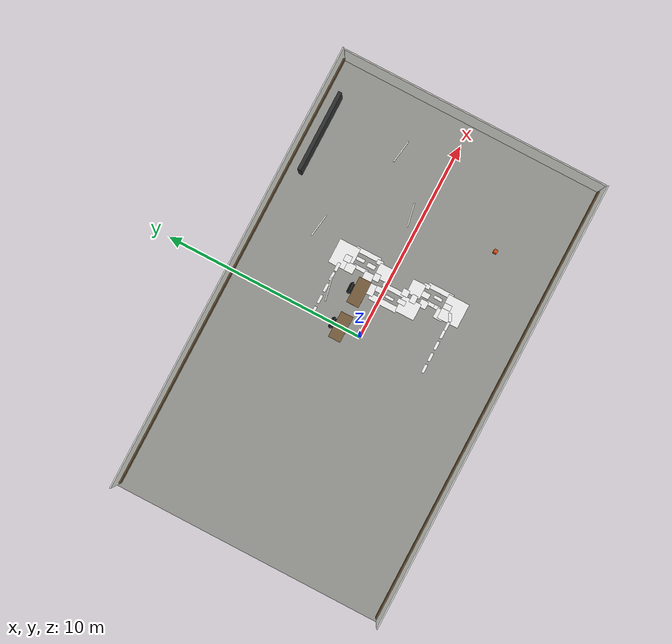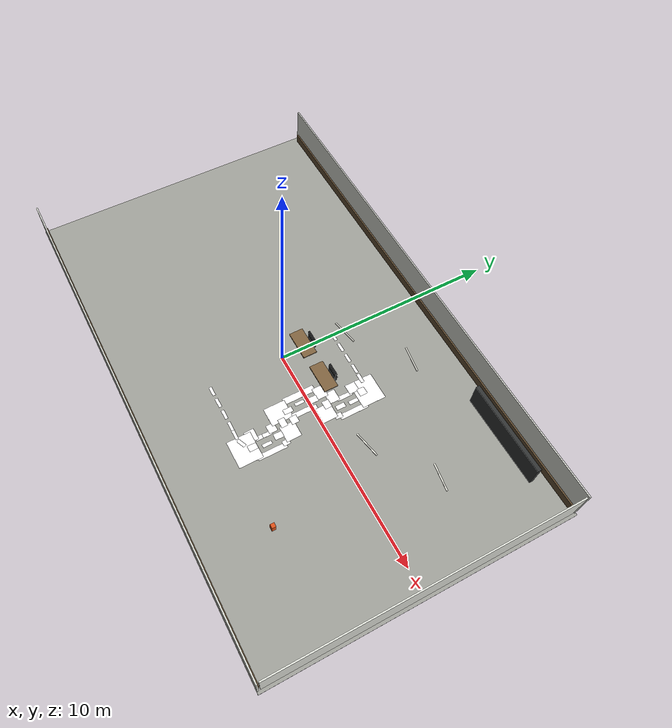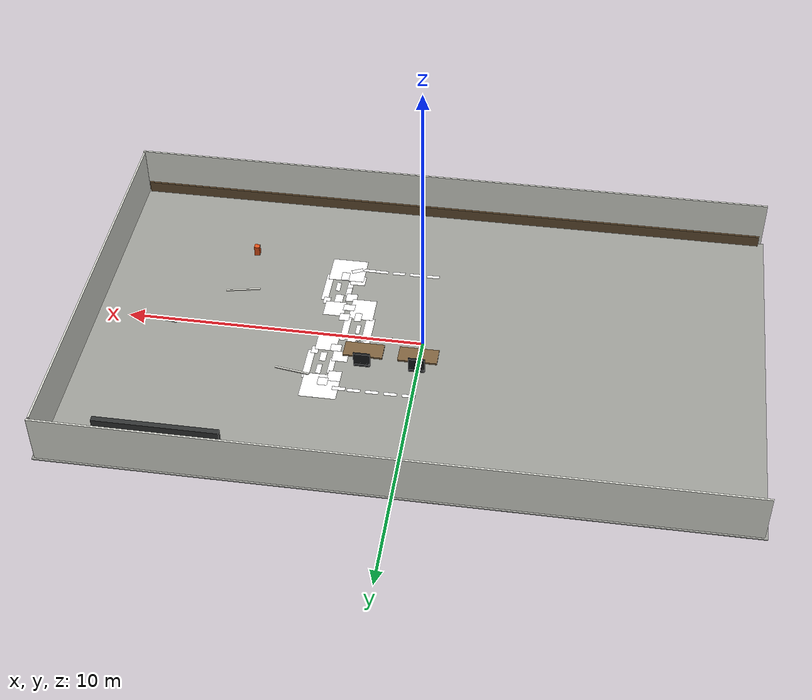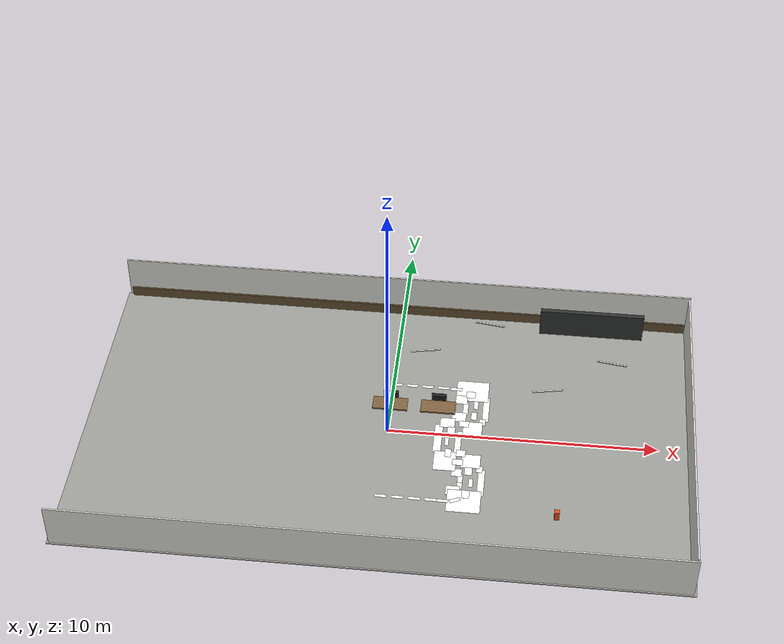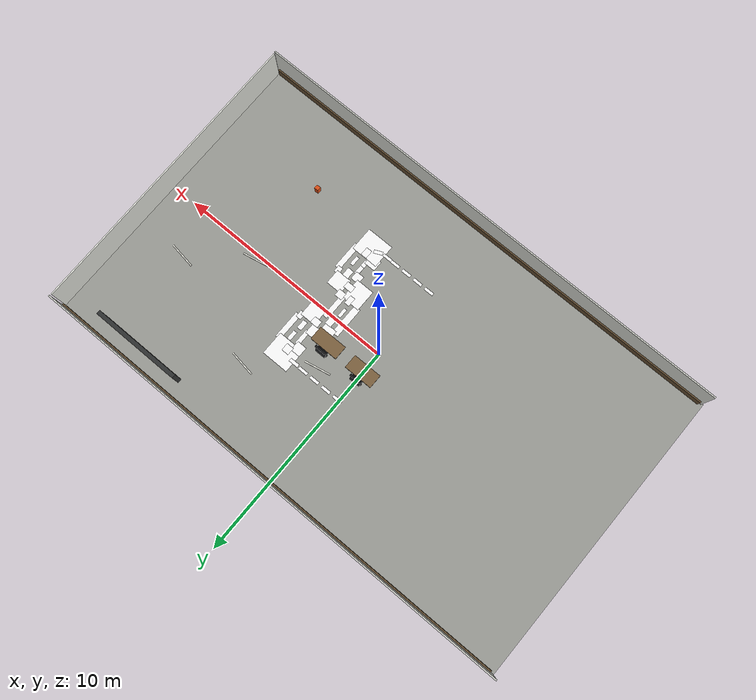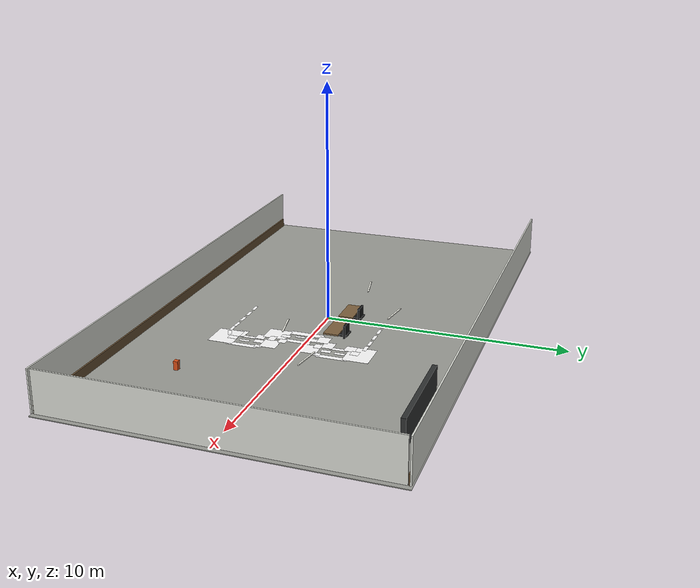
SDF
<sdf version="1.10">
 <world name="kookmin_xycar_track">
  <model name="kookmin_track">
   <static>true</static>
   <link name="floor_base">
    <pose>0 0 -0.014999999999999999 0 0 0</pose>
    <collision name="collision">
     <geometry><box><size>22.5 13.5 0.029999999999999999</size></box></geometry>
     <surface>
      <friction>
       <ode><mu>50</mu><mu2>50</mu2></ode>
       <bullet><friction>1</friction><rolling_friction>0.10000000000000001</rolling_friction></bullet>
      </friction>
     </surface>
    </collision>
    <visual name="visual">
     <geometry><box><size>22.5 13.5 0.029999999999999999</size></box></geometry>
     <material>
      <ambient>0.611800015 0.615700006 0.592199981 1</ambient>
      <diffuse>0.611800015 0.615700006 0.592199981 1</diffuse>
     </material>
    </visual>
    <inertial>
     <mass>1</mass>
     <inertia><ixx>1</ixx><ixy>0</ixy><ixz>0</ixz><iyy>1</iyy><iyz>0</iyz><izz>1</izz></inertia>
    </inertial>
   </link>
   <link name="track_texture_surface">
    <pose>0 0 0.0060000000000000001 0 0 0</pose>
    <visual name="visual">
     <geometry><plane><normal>0 0 1</normal><size>22.5 13.5</size></plane></geometry>
     <material>
      <ambient>1 1 1 1</ambient>
      <diffuse>1 1 1 1</diffuse>
      <pbr>
       <metal>
        <albedo_map>file://media/materials/textures/kookmin_track_road.png</albedo_map>
        <roughness>1</roughness>
        <metalness>0</metalness>
       </metal>
      </pbr>
     </material>
    </visual>
    <inertial>
     <mass>1</mass>
     <inertia><ixx>1</ixx><ixy>0</ixy><ixz>0</ixz><iyy>1</iyy><iyz>0</iyz><izz>1</izz></inertia>
    </inertial>
   </link>
  </model>
  <model name="white_line_cad_07">
   <static>true</static>
   <pose>2.8650000000000002 -2.3149999999999999 0.0152 0 0 0</pose>
   <link name="white_line_cad_07_surface">
    <visual name="visual">
     <cast_shadows>false</cast_shadows>
     <geometry><plane><normal>0 0 1</normal><size>0.19 0.70999999999999996</size></plane></geometry>
     <material>
      <ambient>1 1 1 1</ambient>
      <diffuse>1 1 1 1</diffuse>
      <emissive>0.949000001 0.949000001 0.925499976 1</emissive>
      <pbr>
       <metal>
        <albedo_map>file://media/materials/textures/kookmin_white_line_cad_07.png</albedo_map>
        <roughness>1</roughness>
        <metalness>0</metalness>
       </metal>
      </pbr>
     </material>
    </visual>
    <inertial>
     <mass>1</mass>
     <inertia><ixx>1</ixx><ixy>0</ixy><ixz>0</ixz><iyy>1</iyy><iyz>0</iyz><izz>1</izz></inertia>
    </inertial>
   </link>
  </model>
  <model name="white_line_cad_08">
   <static>true</static>
   <pose>2.645 -2.7749999999999999 0.0154 0 0 0</pose>
   <link name="white_line_cad_08_surface">
    <visual name="visual">
     <cast_shadows>false</cast_shadows>
     <geometry><plane><normal>0 0 1</normal><size>0.51000000000000001 0.45000000000000001</size></plane></geometry>
     <material>
      <ambient>1 1 1 1</ambient>
      <diffuse>1 1 1 1</diffuse>
      <emissive>0.949000001 0.949000001 0.925499976 1</emissive>
      <pbr>
       <metal>
        <albedo_map>file://media/materials/textures/kookmin_white_line_cad_08.png</albedo_map>
        <roughness>1</roughness>
        <metalness>0</metalness>
       </metal>
      </pbr>
     </material>
    </visual>
    <inertial>
     <mass>1</mass>
     <inertia><ixx>1</ixx><ixy>0</ixy><ixz>0</ixz><iyy>1</iyy><iyz>0</iyz><izz>1</izz></inertia>
    </inertial>
   </link>
  </model>
  <model name="white_line_cad_09">
   <static>true</static>
   <pose>3.0699999999999998 -3.2599999999999998 0.015599999999999999 0 0 0</pose>
   <link name="white_line_cad_09_surface">
    <visual name="visual">
     <cast_shadows>false</cast_shadows>
     <geometry><plane><normal>0 0 1</normal><size>1.22 1.0600000000000001</size></plane></geometry>
     <material>
      <ambient>1 1 1 1</ambient>
      <diffuse>1 1 1 1</diffuse>
      <emissive>0.949000001 0.949000001 0.925499976 1</emissive>
      <pbr>
       <metal>
        <albedo_map>file://media/materials/textures/kookmin_white_line_cad_09.png</albedo_map>
        <roughness>1</roughness>
        <metalness>0</metalness>
       </metal>
      </pbr>
     </material>
    </visual>
    <inertial>
     <mass>1</mass>
     <inertia><ixx>1</ixx><ixy>0</ixy><ixz>0</ixz><iyy>1</iyy><iyz>0</iyz><izz>1</izz></inertia>
    </inertial>
   </link>
  </model>
  <model name="white_line_cad_10">
   <static>true</static>
   <pose>3.6299999999999999 -2.3199999999999998 0.015800000000000002 0 0 0</pose>
   <link name="white_line_cad_10_surface">
    <visual name="visual">
     <cast_shadows>false</cast_shadows>
     <geometry><plane><normal>0 0 1</normal><size>0.23999999999999999 1.28</size></plane></geometry>
     <material>
      <ambient>1 1 1 1</ambient>
      <diffuse>1 1 1 1</diffuse>
      <emissive>0.949000001 0.949000001 0.925499976 1</emissive>
      <pbr>
       <metal>
        <albedo_map>file://media/materials/textures/kookmin_white_line_cad_10.png</albedo_map>
        <roughness>1</roughness>
        <metalness>0</metalness>
       </metal>
      </pbr>
     </material>
    </visual>
    <inertial>
     <mass>1</mass>
     <inertia><ixx>1</ixx><ixy>0</ixy><ixz>0</ixz><iyy>1</iyy><iyz>0</iyz><izz>1</izz></inertia>
    </inertial>
   </link>
  </model>
  <model name="white_line_cad_11">
   <static>true</static>
   <pose>3.5350000000000001 -1.645 0.016 0 0 0</pose>
   <link name="white_line_cad_11_surface">
    <visual name="visual">
     <cast_shadows>false</cast_shadows>
     <geometry><plane><normal>0 0 1</normal><size>0.23000000000000001 0.31</size></plane></geometry>
     <material>
      <ambient>1 1 1 1</ambient>
      <diffuse>1 1 1 1</diffuse>
      <emissive>0.949000001 0.949000001 0.925499976 1</emissive>
      <pbr>
       <metal>
        <albedo_map>file://media/materials/textures/kookmin_white_line_cad_11.png</albedo_map>
        <roughness>1</roughness>
        <metalness>0</metalness>
       </metal>
      </pbr>
     </material>
    </visual>
    <inertial>
     <mass>1</mass>
     <inertia><ixx>1</ixx><ixy>0</ixy><ixz>0</ixz><iyy>1</iyy><iyz>0</iyz><izz>1</izz></inertia>
    </inertial>
   </link>
  </model>
  <model name="white_line_cad_12">
   <static>true</static>
   <pose>2.8149999999999999 1.4450000000000001 0.016199999999999999 0 0 0</pose>
   <link name="white_line_cad_12_surface">
    <visual name="visual">
     <cast_shadows>false</cast_shadows>
     <geometry><plane><normal>0 0 1</normal><size>0.19 0.70999999999999996</size></plane></geometry>
     <material>
      <ambient>1 1 1 1</ambient>
      <diffuse>1 1 1 1</diffuse>
      <emissive>0.949000001 0.949000001 0.925499976 1</emissive>
      <pbr>
       <metal>
        <albedo_map>file://media/materials/textures/kookmin_white_line_cad_12.png</albedo_map>
        <roughness>1</roughness>
        <metalness>0</metalness>
       </metal>
      </pbr>
     </material>
    </visual>
    <inertial>
     <mass>1</mass>
     <inertia><ixx>1</ixx><ixy>0</ixy><ixz>0</ixz><iyy>1</iyy><iyz>0</iyz><izz>1</izz></inertia>
    </inertial>
   </link>
  </model>
  <model name="white_line_cad_13">
   <static>true</static>
   <pose>2.6000000000000001 0.97499999999999998 0.016400000000000001 0 0 0</pose>
   <link name="white_line_cad_13_surface">
    <visual name="visual">
     <cast_shadows>false</cast_shadows>
     <geometry><plane><normal>0 0 1</normal><size>0.52000000000000002 0.46999999999999997</size></plane></geometry>
     <material>
      <ambient>1 1 1 1</ambient>
      <diffuse>1 1 1 1</diffuse>
      <emissive>0.949000001 0.949000001 0.925499976 1</emissive>
      <pbr>
       <metal>
        <albedo_map>file://media/materials/textures/kookmin_white_line_cad_13.png</albedo_map>
        <roughness>1</roughness>
        <metalness>0</metalness>
       </metal>
      </pbr>
     </material>
    </visual>
    <inertial>
     <mass>1</mass>
     <inertia><ixx>1</ixx><ixy>0</ixy><ixz>0</ixz><iyy>1</iyy><iyz>0</iyz><izz>1</izz></inertia>
    </inertial>
   </link>
  </model>
  <model name="white_line_cad_14">
   <static>true</static>
   <pose>3.02 2.3999999999999999 0.0166 0 0 0</pose>
   <link name="white_line_cad_14_surface">
    <visual name="visual">
     <cast_shadows>false</cast_shadows>
     <geometry><plane><normal>0 0 1</normal><size>1.22 1.0600000000000001</size></plane></geometry>
     <material>
      <ambient>1 1 1 1</ambient>
      <diffuse>1 1 1 1</diffuse>
      <emissive>0.949000001 0.949000001 0.925499976 1</emissive>
      <pbr>
       <metal>
        <albedo_map>file://media/materials/textures/kookmin_white_line_cad_14.png</albedo_map>
        <roughness>1</roughness>
        <metalness>0</metalness>
       </metal>
      </pbr>
     </material>
    </visual>
    <inertial>
     <mass>1</mass>
     <inertia><ixx>1</ixx><ixy>0</ixy><ixz>0</ixz><iyy>1</iyy><iyz>0</iyz><izz>1</izz></inertia>
    </inertial>
   </link>
  </model>
  <model name="white_line_cad_15">
   <static>true</static>
   <pose>3.5800000000000001 1.45 0.016799999999999999 0 0 0</pose>
   <link name="white_line_cad_15_surface">
    <visual name="visual">
     <cast_shadows>false</cast_shadows>
     <geometry><plane><normal>0 0 1</normal><size>0.23999999999999999 1.28</size></plane></geometry>
     <material>
      <ambient>1 1 1 1</ambient>
      <diffuse>1 1 1 1</diffuse>
      <emissive>0.949000001 0.949000001 0.925499976 1</emissive>
      <pbr>
       <metal>
        <albedo_map>file://media/materials/textures/kookmin_white_line_cad_15.png</albedo_map>
        <roughness>1</roughness>
        <metalness>0</metalness>
       </metal>
      </pbr>
     </material>
    </visual>
    <inertial>
     <mass>1</mass>
     <inertia><ixx>1</ixx><ixy>0</ixy><ixz>0</ixz><iyy>1</iyy><iyz>0</iyz><izz>1</izz></inertia>
    </inertial>
   </link>
  </model>
  <model name="white_line_cad_16">
   <static>true</static>
   <pose>3.4849999999999999 0.78000000000000003 0.017000000000000001 0 0 0</pose>
   <link name="white_line_cad_16_surface">
    <visual name="visual">
     <cast_shadows>false</cast_shadows>
     <geometry><plane><normal>0 0 1</normal><size>0.23000000000000001 0.32000000000000001</size></plane></geometry>
     <material>
      <ambient>1 1 1 1</ambient>
      <diffuse>1 1 1 1</diffuse>
      <emissive>0.949000001 0.949000001 0.925499976 1</emissive>
      <pbr>
       <metal>
        <albedo_map>file://media/materials/textures/kookmin_white_line_cad_16.png</albedo_map>
        <roughness>1</roughness>
        <metalness>0</metalness>
       </metal>
      </pbr>
     </material>
    </visual>
    <inertial>
     <mass>1</mass>
     <inertia><ixx>1</ixx><ixy>0</ixy><ixz>0</ixz><iyy>1</iyy><iyz>0</iyz><izz>1</izz></inertia>
    </inertial>
   </link>
  </model>
  <model name="white_line_cad_17">
   <static>true</static>
   <pose>1.8999999999999999 -0.20499999999999999 0.0172 0 0 0</pose>
   <link name="white_line_cad_17_surface">
    <visual name="visual">
     <cast_shadows>false</cast_shadows>
     <geometry><plane><normal>0 0 1</normal><size>0.29999999999999999 1.4299999999999999</size></plane></geometry>
     <material>
      <ambient>1 1 1 1</ambient>
      <diffuse>1 1 1 1</diffuse>
      <emissive>0.949000001 0.949000001 0.925499976 1</emissive>
      <pbr>
       <metal>
        <albedo_map>file://media/materials/textures/kookmin_white_line_cad_17.png</albedo_map>
        <roughness>1</roughness>
        <metalness>0</metalness>
       </metal>
      </pbr>
     </material>
    </visual>
    <inertial>
     <mass>1</mass>
     <inertia><ixx>1</ixx><ixy>0</ixy><ixz>0</ixz><iyy>1</iyy><iyz>0</iyz><izz>1</izz></inertia>
    </inertial>
   </link>
  </model>
  <model name="white_line_cad_22">
   <static>true</static>
   <pose>2.8700000000000001 -2.165 0.018200000000000001 0 0 0</pose>
   <link name="white_line_cad_22_surface">
    <visual name="visual">
     <cast_shadows>false</cast_shadows>
     <geometry><plane><normal>0 0 1</normal><size>0.17999999999999999 0.40999999999999998</size></plane></geometry>
     <material>
      <ambient>1 1 1 1</ambient>
      <diffuse>1 1 1 1</diffuse>
      <emissive>0.949000001 0.949000001 0.925499976 1</emissive>
      <pbr>
       <metal>
        <albedo_map>file://media/materials/textures/kookmin_white_line_cad_22.png</albedo_map>
        <roughness>1</roughness>
        <metalness>0</metalness>
       </metal>
      </pbr>
     </material>
    </visual>
    <inertial>
     <mass>1</mass>
     <inertia><ixx>1</ixx><ixy>0</ixy><ixz>0</ixz><iyy>1</iyy><iyz>0</iyz><izz>1</izz></inertia>
    </inertial>
   </link>
  </model>
  <model name="white_line_cad_23">
   <static>true</static>
   <pose>2.2450000000000001 -1.3400000000000001 0.0184 0 0 0</pose>
   <link name="white_line_cad_23_surface">
    <visual name="visual">
     <cast_shadows>false</cast_shadows>
     <geometry><plane><normal>0 0 1</normal><size>0.82999999999999996 0.95999999999999996</size></plane></geometry>
     <material>
      <ambient>1 1 1 1</ambient>
      <diffuse>1 1 1 1</diffuse>
      <emissive>0.949000001 0.949000001 0.925499976 1</emissive>
      <pbr>
       <metal>
        <albedo_map>file://media/materials/textures/kookmin_white_line_cad_23.png</albedo_map>
        <roughness>1</roughness>
        <metalness>0</metalness>
       </metal>
      </pbr>
     </material>
    </visual>
    <inertial>
     <mass>1</mass>
     <inertia><ixx>1</ixx><ixy>0</ixy><ixz>0</ixz><iyy>1</iyy><iyz>0</iyz><izz>1</izz></inertia>
    </inertial>
   </link>
  </model>
  <model name="white_line_cad_24">
   <static>true</static>
   <pose>2.7200000000000002 -1.885 0.018599999999999998 0 0 0</pose>
   <link name="white_line_cad_24_surface">
    <visual name="visual">
     <cast_shadows>false</cast_shadows>
     <geometry><plane><normal>0 0 1</normal><size>0.38 0.37</size></plane></geometry>
     <material>
      <ambient>1 1 1 1</ambient>
      <diffuse>1 1 1 1</diffuse>
      <emissive>0.949000001 0.949000001 0.925499976 1</emissive>
      <pbr>
       <metal>
        <albedo_map>file://media/materials/textures/kookmin_white_line_cad_24.png</albedo_map>
        <roughness>1</roughness>
        <metalness>0</metalness>
       </metal>
      </pbr>
     </material>
    </visual>
    <inertial>
     <mass>1</mass>
     <inertia><ixx>1</ixx><ixy>0</ixy><ixz>0</ixz><iyy>1</iyy><iyz>0</iyz><izz>1</izz></inertia>
    </inertial>
   </link>
  </model>
  <model name="white_line_cad_25">
   <static>true</static>
   <pose>2.1949999999999998 0.625 0.018800000000000001 0 0 0</pose>
   <link name="white_line_cad_25_surface">
    <visual name="visual">
     <cast_shadows>false</cast_shadows>
     <geometry><plane><normal>0 0 1</normal><size>0.55000000000000004 0.48999999999999999</size></plane></geometry>
     <material>
      <ambient>1 1 1 1</ambient>
      <diffuse>1 1 1 1</diffuse>
      <emissive>0.949000001 0.949000001 0.925499976 1</emissive>
      <pbr>
       <metal>
        <albedo_map>file://media/materials/textures/kookmin_white_line_cad_25.png</albedo_map>
        <roughness>1</roughness>
        <metalness>0</metalness>
       </metal>
      </pbr>
     </material>
    </visual>
    <inertial>
     <mass>1</mass>
     <inertia><ixx>1</ixx><ixy>0</ixy><ixz>0</ixz><iyy>1</iyy><iyz>0</iyz><izz>1</izz></inertia>
    </inertial>
   </link>
  </model>
  <model name="white_line_cad_26">
   <static>true</static>
   <pose>2.7549999999999999 0.065000000000000002 0.019 0 0 0</pose>
   <link name="white_line_cad_26_surface">
    <visual name="visual">
     <cast_shadows>false</cast_shadows>
     <geometry><plane><normal>0 0 1</normal><size>0.33000000000000002 0.28999999999999998</size></plane></geometry>
     <material>
      <ambient>1 1 1 1</ambient>
      <diffuse>1 1 1 1</diffuse>
      <emissive>0.949000001 0.949000001 0.925499976 1</emissive>
      <pbr>
       <metal>
        <albedo_map>file://media/materials/textures/kookmin_white_line_cad_26.png</albedo_map>
        <roughness>1</roughness>
        <metalness>0</metalness>
       </metal>
      </pbr>
     </material>
    </visual>
    <inertial>
     <mass>1</mass>
     <inertia><ixx>1</ixx><ixy>0</ixy><ixz>0</ixz><iyy>1</iyy><iyz>0</iyz><izz>1</izz></inertia>
    </inertial>
   </link>
  </model>
  <model name="white_line_cad_27">
   <static>true</static>
   <pose>3.145 0.41499999999999998 0.019199999999999998 0 0 0</pose>
   <link name="white_line_cad_27_surface">
    <visual name="visual">
     <cast_shadows>false</cast_shadows>
     <geometry><plane><normal>0 0 1</normal><size>0.70999999999999996 0.67000000000000004</size></plane></geometry>
     <material>
      <ambient>1 1 1 1</ambient>
      <diffuse>1 1 1 1</diffuse>
      <emissive>0.949000001 0.949000001 0.925499976 1</emissive>
      <pbr>
       <metal>
        <albedo_map>file://media/materials/textures/kookmin_white_line_cad_27.png</albedo_map>
        <roughness>1</roughness>
        <metalness>0</metalness>
       </metal>
      </pbr>
     </material>
    </visual>
    <inertial>
     <mass>1</mass>
     <inertia><ixx>1</ixx><ixy>0</ixy><ixz>0</ixz><iyy>1</iyy><iyz>0</iyz><izz>1</izz></inertia>
    </inertial>
   </link>
  </model>
  <model name="white_line_cad_28">
   <static>true</static>
   <pose>2.6549999999999998 -0.42999999999999999 0.019400000000000001 0 0 0</pose>
   <link name="white_line_cad_28_surface">
    <visual name="visual">
     <cast_shadows>false</cast_shadows>
     <geometry><plane><normal>0 0 1</normal><size>0.23000000000000001 0.93999999999999995</size></plane></geometry>
     <material>
      <ambient>1 1 1 1</ambient>
      <diffuse>1 1 1 1</diffuse>
      <emissive>0.949000001 0.949000001 0.925499976 1</emissive>
      <pbr>
       <metal>
        <albedo_map>file://media/materials/textures/kookmin_white_line_cad_28.png</albedo_map>
        <roughness>1</roughness>
        <metalness>0</metalness>
       </metal>
      </pbr>
     </material>
    </visual>
    <inertial>
     <mass>1</mass>
     <inertia><ixx>1</ixx><ixy>0</ixy><ixz>0</ixz><iyy>1</iyy><iyz>0</iyz><izz>1</izz></inertia>
    </inertial>
   </link>
  </model>
  <model name="white_line_cad_29">
   <static>true</static>
   <pose>3.1949999999999998 -1.2749999999999999 0.019599999999999999 0 0 0</pose>
   <link name="white_line_cad_29_surface">
    <visual name="visual">
     <cast_shadows>false</cast_shadows>
     <geometry><plane><normal>0 0 1</normal><size>0.70999999999999996 0.67000000000000004</size></plane></geometry>
     <material>
      <ambient>1 1 1 1</ambient>
      <diffuse>1 1 1 1</diffuse>
      <emissive>0.949000001 0.949000001 0.925499976 1</emissive>
      <pbr>
       <metal>
        <albedo_map>file://media/materials/textures/kookmin_white_line_cad_29.png</albedo_map>
        <roughness>1</roughness>
        <metalness>0</metalness>
       </metal>
      </pbr>
     </material>
    </visual>
    <inertial>
     <mass>1</mass>
     <inertia><ixx>1</ixx><ixy>0</ixy><ixz>0</ixz><iyy>1</iyy><iyz>0</iyz><izz>1</izz></inertia>
    </inertial>
   </link>
  </model>
  <model name="white_line_cad_30">
   <static>true</static>
   <pose>2.7999999999999998 -0.90500000000000003 0.019800000000000002 0 0 0</pose>
   <link name="white_line_cad_30_surface">
    <visual name="visual">
     <cast_shadows>false</cast_shadows>
     <geometry><plane><normal>0 0 1</normal><size>0.34000000000000002 0.33000000000000002</size></plane></geometry>
     <material>
      <ambient>1 1 1 1</ambient>
      <diffuse>1 1 1 1</diffuse>
      <emissive>0.949000001 0.949000001 0.925499976 1</emissive>
      <pbr>
       <metal>
        <albedo_map>file://media/materials/textures/kookmin_white_line_cad_30.png</albedo_map>
        <roughness>1</roughness>
        <metalness>0</metalness>
       </metal>
      </pbr>
     </material>
    </visual>
    <inertial>
     <mass>1</mass>
     <inertia><ixx>1</ixx><ixy>0</ixy><ixz>0</ixz><iyy>1</iyy><iyz>0</iyz><izz>1</izz></inertia>
    </inertial>
   </link>
  </model>
  <model name="white_line_cad_31">
   <static>true</static>
   <pose>2.6299999999999999 1.905 0.02 0 0 0</pose>
   <link name="white_line_cad_31_surface">
    <visual name="visual">
     <cast_shadows>false</cast_shadows>
     <geometry><plane><normal>0 0 1</normal><size>0.44 0.45000000000000001</size></plane></geometry>
     <material>
      <ambient>1 1 1 1</ambient>
      <diffuse>1 1 1 1</diffuse>
      <emissive>0.949000001 0.949000001 0.925499976 1</emissive>
      <pbr>
       <metal>
        <albedo_map>file://media/materials/textures/kookmin_white_line_cad_31.png</albedo_map>
        <roughness>1</roughness>
        <metalness>0</metalness>
       </metal>
      </pbr>
     </material>
    </visual>
    <inertial>
     <mass>1</mass>
     <inertia><ixx>1</ixx><ixy>0</ixy><ixz>0</ixz><iyy>1</iyy><iyz>0</iyz><izz>1</izz></inertia>
    </inertial>
   </link>
  </model>
  <model name="yellow_centerline_dash_005">
   <static>true</static>
   <pose>0.105 2.4649999999999999 0.027300000000000001 0 0 0</pose>
   <link name="yellow_centerline_dash_005_surface">
    <visual name="visual">
     <cast_shadows>false</cast_shadows>
     <geometry><plane><normal>0 0 1</normal><size>0.42999999999999999 0.13</size></plane></geometry>
     <material>
      <ambient>1 1 1 1</ambient>
      <diffuse>1 1 1 1</diffuse>
      <emissive>1 0.768599987 0.0471000001 1</emissive>
      <pbr>
       <metal>
        <albedo_map>file://media/materials/textures/kookmin_yellow_centerline_dash_005.png</albedo_map>
        <roughness>1</roughness>
        <metalness>0</metalness>
       </metal>
      </pbr>
     </material>
    </visual>
    <inertial>
     <mass>1</mass>
     <inertia><ixx>1</ixx><ixy>0</ixy><ixz>0</ixz><iyy>1</iyy><iyz>0</iyz><izz>1</izz></inertia>
    </inertial>
   </link>
  </model>
  <model name="yellow_centerline_dash_006">
   <static>true</static>
   <pose>0.70499999999999996 2.4649999999999999 0.0275 0 0 0</pose>
   <link name="yellow_centerline_dash_006_surface">
    <visual name="visual">
     <cast_shadows>false</cast_shadows>
     <geometry><plane><normal>0 0 1</normal><size>0.42999999999999999 0.13</size></plane></geometry>
     <material>
      <ambient>1 1 1 1</ambient>
      <diffuse>1 1 1 1</diffuse>
      <emissive>1 0.768599987 0.0471000001 1</emissive>
      <pbr>
       <metal>
        <albedo_map>file://media/materials/textures/kookmin_yellow_centerline_dash_006.png</albedo_map>
        <roughness>1</roughness>
        <metalness>0</metalness>
       </metal>
      </pbr>
     </material>
    </visual>
    <inertial>
     <mass>1</mass>
     <inertia><ixx>1</ixx><ixy>0</ixy><ixz>0</ixz><iyy>1</iyy><iyz>0</iyz><izz>1</izz></inertia>
    </inertial>
   </link>
  </model>
  <model name="yellow_centerline_dash_007">
   <static>true</static>
   <pose>1.3049999999999999 2.4649999999999999 0.027699999999999999 0 0 0</pose>
   <link name="yellow_centerline_dash_007_surface">
    <visual name="visual">
     <cast_shadows>false</cast_shadows>
     <geometry><plane><normal>0 0 1</normal><size>0.42999999999999999 0.13</size></plane></geometry>
     <material>
      <ambient>1 1 1 1</ambient>
      <diffuse>1 1 1 1</diffuse>
      <emissive>1 0.768599987 0.0471000001 1</emissive>
      <pbr>
       <metal>
        <albedo_map>file://media/materials/textures/kookmin_yellow_centerline_dash_007.png</albedo_map>
        <roughness>1</roughness>
        <metalness>0</metalness>
       </metal>
      </pbr>
     </material>
    </visual>
    <inertial>
     <mass>1</mass>
     <inertia><ixx>1</ixx><ixy>0</ixy><ixz>0</ixz><iyy>1</iyy><iyz>0</iyz><izz>1</izz></inertia>
    </inertial>
   </link>
  </model>
  <model name="yellow_centerline_dash_008">
   <static>true</static>
   <pose>1.8999999999999999 2.4649999999999999 0.027900000000000001 0 0 0</pose>
   <link name="yellow_centerline_dash_008_surface">
    <visual name="visual">
     <cast_shadows>false</cast_shadows>
     <geometry><plane><normal>0 0 1</normal><size>0.44 0.13</size></plane></geometry>
     <material>
      <ambient>1 1 1 1</ambient>
      <diffuse>1 1 1 1</diffuse>
      <emissive>1 0.768599987 0.0471000001 1</emissive>
      <pbr>
       <metal>
        <albedo_map>file://media/materials/textures/kookmin_yellow_centerline_dash_008.png</albedo_map>
        <roughness>1</roughness>
        <metalness>0</metalness>
       </metal>
      </pbr>
     </material>
    </visual>
    <inertial>
     <mass>1</mass>
     <inertia><ixx>1</ixx><ixy>0</ixy><ixz>0</ixz><iyy>1</iyy><iyz>0</iyz><izz>1</izz></inertia>
    </inertial>
   </link>
  </model>
  <model name="yellow_centerline_dash_010">
   <static>true</static>
   <pose>2.395 2.4449999999999998 0.028299999999999999 0 0 0</pose>
   <link name="yellow_centerline_dash_010_surface">
    <visual name="visual">
     <cast_shadows>false</cast_shadows>
     <geometry><plane><normal>0 0 1</normal><size>0.42999999999999999 0.14999999999999999</size></plane></geometry>
     <material>
      <ambient>1 1 1 1</ambient>
      <diffuse>1 1 1 1</diffuse>
      <emissive>1 0.768599987 0.0471000001 1</emissive>
      <pbr>
       <metal>
        <albedo_map>file://media/materials/textures/kookmin_yellow_centerline_dash_010.png</albedo_map>
        <roughness>1</roughness>
        <metalness>0</metalness>
       </metal>
      </pbr>
     </material>
    </visual>
    <inertial>
     <mass>1</mass>
     <inertia><ixx>1</ixx><ixy>0</ixy><ixz>0</ixz><iyy>1</iyy><iyz>0</iyz><izz>1</izz></inertia>
    </inertial>
   </link>
  </model>
  <model name="yellow_centerline_dash_012">
   <static>true</static>
   <pose>2.9649999999999999 2.1899999999999999 0.0287 0 0 0</pose>
   <link name="yellow_centerline_dash_012_surface">
    <visual name="visual">
     <cast_shadows>false</cast_shadows>
     <geometry><plane><normal>0 0 1</normal><size>0.33000000000000002 0.34000000000000002</size></plane></geometry>
     <material>
      <ambient>1 1 1 1</ambient>
      <diffuse>1 1 1 1</diffuse>
      <emissive>1 0.768599987 0.0471000001 1</emissive>
      <pbr>
       <metal>
        <albedo_map>file://media/materials/textures/kookmin_yellow_centerline_dash_012.png</albedo_map>
        <roughness>1</roughness>
        <metalness>0</metalness>
       </metal>
      </pbr>
     </material>
    </visual>
    <inertial>
     <mass>1</mass>
     <inertia><ixx>1</ixx><ixy>0</ixy><ixz>0</ixz><iyy>1</iyy><iyz>0</iyz><izz>1</izz></inertia>
    </inertial>
   </link>
  </model>
  <model name="yellow_centerline_dash_015">
   <static>true</static>
   <pose>3.1949999999999998 1.6499999999999999 0.0293 0 0 0</pose>
   <link name="yellow_centerline_dash_015_surface">
    <visual name="visual">
     <cast_shadows>false</cast_shadows>
     <geometry><plane><normal>0 0 1</normal><size>0.17000000000000001 0.41999999999999998</size></plane></geometry>
     <material>
      <ambient>1 1 1 1</ambient>
      <diffuse>1 1 1 1</diffuse>
      <emissive>1 0.768599987 0.0471000001 1</emissive>
      <pbr>
       <metal>
        <albedo_map>file://media/materials/textures/kookmin_yellow_centerline_dash_015.png</albedo_map>
        <roughness>1</roughness>
        <metalness>0</metalness>
       </metal>
      </pbr>
     </material>
    </visual>
    <inertial>
     <mass>1</mass>
     <inertia><ixx>1</ixx><ixy>0</ixy><ixz>0</ixz><iyy>1</iyy><iyz>0</iyz><izz>1</izz></inertia>
    </inertial>
   </link>
  </model>
  <model name="yellow_centerline_dash_017">
   <static>true</static>
   <pose>3.1549999999999998 1.0649999999999999 0.029700000000000001 0 0 0</pose>
   <link name="yellow_centerline_dash_017_surface">
    <visual name="visual">
     <cast_shadows>false</cast_shadows>
     <geometry><plane><normal>0 0 1</normal><size>0.20999999999999999 0.40999999999999998</size></plane></geometry>
     <material>
      <ambient>1 1 1 1</ambient>
      <diffuse>1 1 1 1</diffuse>
      <emissive>1 0.768599987 0.0471000001 1</emissive>
      <pbr>
       <metal>
        <albedo_map>file://media/materials/textures/kookmin_yellow_centerline_dash_017.png</albedo_map>
        <roughness>1</roughness>
        <metalness>0</metalness>
       </metal>
      </pbr>
     </material>
    </visual>
    <inertial>
     <mass>1</mass>
     <inertia><ixx>1</ixx><ixy>0</ixy><ixz>0</ixz><iyy>1</iyy><iyz>0</iyz><izz>1</izz></inertia>
    </inertial>
   </link>
  </model>
  <model name="yellow_centerline_dash_018">
   <static>true</static>
   <pose>2.8100000000000001 0.60499999999999998 0.029899999999999999 0 0 0</pose>
   <link name="yellow_centerline_dash_018_surface">
    <visual name="visual">
     <cast_shadows>false</cast_shadows>
     <geometry><plane><normal>0 0 1</normal><size>0.35999999999999999 0.31</size></plane></geometry>
     <material>
      <ambient>1 1 1 1</ambient>
      <diffuse>1 1 1 1</diffuse>
      <emissive>1 0.768599987 0.0471000001 1</emissive>
      <pbr>
       <metal>
        <albedo_map>file://media/materials/textures/kookmin_yellow_centerline_dash_018.png</albedo_map>
        <roughness>1</roughness>
        <metalness>0</metalness>
       </metal>
      </pbr>
     </material>
    </visual>
    <inertial>
     <mass>1</mass>
     <inertia><ixx>1</ixx><ixy>0</ixy><ixz>0</ixz><iyy>1</iyy><iyz>0</iyz><izz>1</izz></inertia>
    </inertial>
   </link>
  </model>
  <model name="yellow_centerline_dash_020">
   <static>true</static>
   <pose>2.3650000000000002 0.215 0.030300000000000001 0 0 0</pose>
   <link name="yellow_centerline_dash_020_surface">
    <visual name="visual">
     <cast_shadows>false</cast_shadows>
     <geometry><plane><normal>0 0 1</normal><size>0.28999999999999998 0.37</size></plane></geometry>
     <material>
      <ambient>1 1 1 1</ambient>
      <diffuse>1 1 1 1</diffuse>
      <emissive>1 0.768599987 0.0471000001 1</emissive>
      <pbr>
       <metal>
        <albedo_map>file://media/materials/textures/kookmin_yellow_centerline_dash_020.png</albedo_map>
        <roughness>1</roughness>
        <metalness>0</metalness>
       </metal>
      </pbr>
     </material>
    </visual>
    <inertial>
     <mass>1</mass>
     <inertia><ixx>1</ixx><ixy>0</ixy><ixz>0</ixz><iyy>1</iyy><iyz>0</iyz><izz>1</izz></inertia>
    </inertial>
   </link>
  </model>
  <model name="yellow_centerline_dash_022">
   <static>true</static>
   <pose>2.2400000000000002 -0.35999999999999999 0.030700000000000002 0 0 0</pose>
   <link name="yellow_centerline_dash_022_surface">
    <visual name="visual">
     <cast_shadows>false</cast_shadows>
     <geometry><plane><normal>0 0 1</normal><size>0.14000000000000001 0.41999999999999998</size></plane></geometry>
     <material>
      <ambient>1 1 1 1</ambient>
      <diffuse>1 1 1 1</diffuse>
      <emissive>1 0.768599987 0.0471000001 1</emissive>
      <pbr>
       <metal>
        <albedo_map>file://media/materials/textures/kookmin_yellow_centerline_dash_022.png</albedo_map>
        <roughness>1</roughness>
        <metalness>0</metalness>
       </metal>
      </pbr>
     </material>
    </visual>
    <inertial>
     <mass>1</mass>
     <inertia><ixx>1</ixx><ixy>0</ixy><ixz>0</ixz><iyy>1</iyy><iyz>0</iyz><izz>1</izz></inertia>
    </inertial>
   </link>
  </model>
  <model name="yellow_centerline_dash_024">
   <static>true</static>
   <pose>2.335 -0.93999999999999995 0.031099999999999999 0 0 0</pose>
   <link name="yellow_centerline_dash_024_surface">
    <visual name="visual">
     <cast_shadows>false</cast_shadows>
     <geometry><plane><normal>0 0 1</normal><size>0.23000000000000001 0.40000000000000002</size></plane></geometry>
     <material>
      <ambient>1 1 1 1</ambient>
      <diffuse>1 1 1 1</diffuse>
      <emissive>1 0.768599987 0.0471000001 1</emissive>
      <pbr>
       <metal>
        <albedo_map>file://media/materials/textures/kookmin_yellow_centerline_dash_024.png</albedo_map>
        <roughness>1</roughness>
        <metalness>0</metalness>
       </metal>
      </pbr>
     </material>
    </visual>
    <inertial>
     <mass>1</mass>
     <inertia><ixx>1</ixx><ixy>0</ixy><ixz>0</ixz><iyy>1</iyy><iyz>0</iyz><izz>1</izz></inertia>
    </inertial>
   </link>
  </model>
  <model name="yellow_centerline_dash_026">
   <static>true</static>
   <pose>2.7149999999999999 -1.375 0.0315 0 0 0</pose>
   <link name="yellow_centerline_dash_026_surface">
    <visual name="visual">
     <cast_shadows>false</cast_shadows>
     <geometry><plane><normal>0 0 1</normal><size>0.39000000000000001 0.28999999999999998</size></plane></geometry>
     <material>
      <ambient>1 1 1 1</ambient>
      <diffuse>1 1 1 1</diffuse>
      <emissive>1 0.768599987 0.0471000001 1</emissive>
      <pbr>
       <metal>
        <albedo_map>file://media/materials/textures/kookmin_yellow_centerline_dash_026.png</albedo_map>
        <roughness>1</roughness>
        <metalness>0</metalness>
       </metal>
      </pbr>
     </material>
    </visual>
    <inertial>
     <mass>1</mass>
     <inertia><ixx>1</ixx><ixy>0</ixy><ixz>0</ixz><iyy>1</iyy><iyz>0</iyz><izz>1</izz></inertia>
    </inertial>
   </link>
  </model>
  <model name="yellow_centerline_dash_027">
   <static>true</static>
   <pose>3.1400000000000001 -1.79 0.031699999999999999 0 0 0</pose>
   <link name="yellow_centerline_dash_027_surface">
    <visual name="visual">
     <cast_shadows>false</cast_shadows>
     <geometry><plane><normal>0 0 1</normal><size>0.28000000000000003 0.38</size></plane></geometry>
     <material>
      <ambient>1 1 1 1</ambient>
      <diffuse>1 1 1 1</diffuse>
      <emissive>1 0.768599987 0.0471000001 1</emissive>
      <pbr>
       <metal>
        <albedo_map>file://media/materials/textures/kookmin_yellow_centerline_dash_027.png</albedo_map>
        <roughness>1</roughness>
        <metalness>0</metalness>
       </metal>
      </pbr>
     </material>
    </visual>
    <inertial>
     <mass>1</mass>
     <inertia><ixx>1</ixx><ixy>0</ixy><ixz>0</ixz><iyy>1</iyy><iyz>0</iyz><izz>1</izz></inertia>
    </inertial>
   </link>
  </model>
  <model name="yellow_centerline_dash_029">
   <static>true</static>
   <pose>3.2650000000000001 -2.3599999999999999 0.032099999999999997 0 0 0</pose>
   <link name="yellow_centerline_dash_029_surface">
    <visual name="visual">
     <cast_shadows>false</cast_shadows>
     <geometry><plane><normal>0 0 1</normal><size>0.14999999999999999 0.41999999999999998</size></plane></geometry>
     <material>
      <ambient>1 1 1 1</ambient>
      <diffuse>1 1 1 1</diffuse>
      <emissive>1 0.768599987 0.0471000001 1</emissive>
      <pbr>
       <metal>
        <albedo_map>file://media/materials/textures/kookmin_yellow_centerline_dash_029.png</albedo_map>
        <roughness>1</roughness>
        <metalness>0</metalness>
       </metal>
      </pbr>
     </material>
    </visual>
    <inertial>
     <mass>1</mass>
     <inertia><ixx>1</ixx><ixy>0</ixy><ixz>0</ixz><iyy>1</iyy><iyz>0</iyz><izz>1</izz></inertia>
    </inertial>
   </link>
  </model>
  <model name="yellow_centerline_dash_031">
   <static>true</static>
   <pose>3.1150000000000002 -2.9300000000000002 0.032500000000000001 0 0 0</pose>
   <link name="yellow_centerline_dash_031_surface">
    <visual name="visual">
     <cast_shadows>false</cast_shadows>
     <geometry><plane><normal>0 0 1</normal><size>0.27000000000000002 0.38</size></plane></geometry>
     <material>
      <ambient>1 1 1 1</ambient>
      <diffuse>1 1 1 1</diffuse>
      <emissive>1 0.768599987 0.0471000001 1</emissive>
      <pbr>
       <metal>
        <albedo_map>file://media/materials/textures/kookmin_yellow_centerline_dash_031.png</albedo_map>
        <roughness>1</roughness>
        <metalness>0</metalness>
       </metal>
      </pbr>
     </material>
    </visual>
    <inertial>
     <mass>1</mass>
     <inertia><ixx>1</ixx><ixy>0</ixy><ixz>0</ixz><iyy>1</iyy><iyz>0</iyz><izz>1</izz></inertia>
    </inertial>
   </link>
  </model>
  <model name="yellow_centerline_dash_034">
   <static>true</static>
   <pose>2.7546629905700684 -3.2555220127105713 0.033100001513957977 0 0 0.42480900877644706</pose>
   <link name="yellow_centerline_dash_034_surface">
    <visual name="visual">
     <cast_shadows>false</cast_shadows>
     <geometry><plane><normal>0 0 1</normal><size>0.39000000000000001 0.14999999999999999</size></plane></geometry>
     <material>
      <ambient>1 1 1 1</ambient>
      <diffuse>1 1 1 1</diffuse>
      <emissive>1 0.768599987 0.0471000001 1</emissive>
      <pbr>
       <metal>
        <albedo_map>file://media/materials/textures/kookmin_yellow_centerline_dash_034.png</albedo_map>
        <roughness>1</roughness>
        <metalness>0</metalness>
       </metal>
      </pbr>
     </material>
    </visual>
    <inertial>
     <mass>1</mass>
     <inertia><ixx>1</ixx><ixy>0</ixy><ixz>0</ixz><iyy>1</iyy><iyz>0</iyz><izz>1</izz></inertia>
    </inertial>
   </link>
  </model>
  <model name="yellow_centerline_dash_040">
   <static>true</static>
   <pose>0.105 -3.3149999999999999 0.034299999999999997 0 0 0</pose>
   <link name="yellow_centerline_dash_040_surface">
    <visual name="visual">
     <cast_shadows>false</cast_shadows>
     <geometry><plane><normal>0 0 1</normal><size>0.42999999999999999 0.13</size></plane></geometry>
     <material>
      <ambient>1 1 1 1</ambient>
      <diffuse>1 1 1 1</diffuse>
      <emissive>1 0.768599987 0.0471000001 1</emissive>
      <pbr>
       <metal>
        <albedo_map>file://media/materials/textures/kookmin_yellow_centerline_dash_040.png</albedo_map>
        <roughness>1</roughness>
        <metalness>0</metalness>
       </metal>
      </pbr>
     </material>
    </visual>
    <inertial>
     <mass>1</mass>
     <inertia><ixx>1</ixx><ixy>0</ixy><ixz>0</ixz><iyy>1</iyy><iyz>0</iyz><izz>1</izz></inertia>
    </inertial>
   </link>
  </model>
  <model name="yellow_centerline_dash_041">
   <static>true</static>
   <pose>0.70499999999999996 -3.3149999999999999 0.034500000000000003 0 0 0</pose>
   <link name="yellow_centerline_dash_041_surface">
    <visual name="visual">
     <cast_shadows>false</cast_shadows>
     <geometry><plane><normal>0 0 1</normal><size>0.42999999999999999 0.13</size></plane></geometry>
     <material>
      <ambient>1 1 1 1</ambient>
      <diffuse>1 1 1 1</diffuse>
      <emissive>1 0.768599987 0.0471000001 1</emissive>
      <pbr>
       <metal>
        <albedo_map>file://media/materials/textures/kookmin_yellow_centerline_dash_041.png</albedo_map>
        <roughness>1</roughness>
        <metalness>0</metalness>
       </metal>
      </pbr>
     </material>
    </visual>
    <inertial>
     <mass>1</mass>
     <inertia><ixx>1</ixx><ixy>0</ixy><ixz>0</ixz><iyy>1</iyy><iyz>0</iyz><izz>1</izz></inertia>
    </inertial>
   </link>
  </model>
  <model name="yellow_centerline_dash_042">
   <static>true</static>
   <pose>1.3049999999999999 -3.3149999999999999 0.034700000000000002 0 0 0</pose>
   <link name="yellow_centerline_dash_042_surface">
    <visual name="visual">
     <cast_shadows>false</cast_shadows>
     <geometry><plane><normal>0 0 1</normal><size>0.42999999999999999 0.13</size></plane></geometry>
     <material>
      <ambient>1 1 1 1</ambient>
      <diffuse>1 1 1 1</diffuse>
      <emissive>1 0.768599987 0.0471000001 1</emissive>
      <pbr>
       <metal>
        <albedo_map>file://media/materials/textures/kookmin_yellow_centerline_dash_042.png</albedo_map>
        <roughness>1</roughness>
        <metalness>0</metalness>
       </metal>
      </pbr>
     </material>
    </visual>
    <inertial>
     <mass>1</mass>
     <inertia><ixx>1</ixx><ixy>0</ixy><ixz>0</ixz><iyy>1</iyy><iyz>0</iyz><izz>1</izz></inertia>
    </inertial>
   </link>
  </model>
  <model name="yellow_centerline_dash_043">
   <static>true</static>
   <pose>1.8999999999999999 -3.3149999999999999 0.0349 0 0 0</pose>
   <link name="yellow_centerline_dash_043_surface">
    <visual name="visual">
     <cast_shadows>false</cast_shadows>
     <geometry><plane><normal>0 0 1</normal><size>0.44 0.13</size></plane></geometry>
     <material>
      <ambient>1 1 1 1</ambient>
      <diffuse>1 1 1 1</diffuse>
      <emissive>1 0.768599987 0.0471000001 1</emissive>
      <pbr>
       <metal>
        <albedo_map>file://media/materials/textures/kookmin_yellow_centerline_dash_043.png</albedo_map>
        <roughness>1</roughness>
        <metalness>0</metalness>
       </metal>
      </pbr>
     </material>
    </visual>
    <inertial>
     <mass>1</mass>
     <inertia><ixx>1</ixx><ixy>0</ixy><ixz>0</ixz><iyy>1</iyy><iyz>0</iyz><izz>1</izz></inertia>
    </inertial>
   </link>
  </model>
  <model name="yellow_centerline_dash_044">
   <static>true</static>
   <pose>2.3149999999999999 -3.3250000000000002 0.035099999999999999 0 0 0</pose>
   <link name="yellow_centerline_dash_044_surface">
    <visual name="visual">
     <cast_shadows>false</cast_shadows>
     <geometry><plane><normal>0 0 1</normal><size>0.42999999999999999 0.13</size></plane></geometry>
     <material>
      <ambient>1 1 1 1</ambient>
      <diffuse>1 1 1 1</diffuse>
      <emissive>1 0.768599987 0.0471000001 1</emissive>
      <pbr>
       <metal>
        <albedo_map>file://media/materials/textures/kookmin_yellow_centerline_dash_044.png</albedo_map>
        <roughness>1</roughness>
        <metalness>0</metalness>
       </metal>
      </pbr>
     </material>
    </visual>
    <inertial>
     <mass>1</mass>
     <inertia><ixx>1</ixx><ixy>0</ixy><ixz>0</ixz><iyy>1</iyy><iyz>0</iyz><izz>1</izz></inertia>
    </inertial>
   </link>
  </model>
  <model name="room_north_wall">
   <static>true</static>
   <pose>0.0000 6.7000 0.9000 0.000000 0.000000 0.000000</pose>
   <link name="north_wall">
    <visual name="visual">
     <geometry><box><size>22.3000 0.0600 1.7000</size></box></geometry>
     <material><ambient>0.8627 0.8706 0.8392 1</ambient><diffuse>0.8627 0.8706 0.8392 1</diffuse></material>
    </visual>
   </link>
  </model>
  <model name="room_south_wall">
   <static>true</static>
   <pose>0.0000 -6.7000 0.9000 0.000000 0.000000 0.000000</pose>
   <link name="south_wall">
    <visual name="visual">
     <geometry><box><size>22.3000 0.0600 1.7000</size></box></geometry>
     <material><ambient>0.8627 0.8706 0.8392 1</ambient><diffuse>0.8627 0.8706 0.8392 1</diffuse></material>
    </visual>
   </link>
  </model>
  <model name="room_east_wall">
   <static>true</static>
   <pose>11.1000 0.0000 0.9000 0.000000 0.000000 0.000000</pose>
   <link name="east_wall">
    <visual name="visual">
     <geometry><box><size>0.0600 13.2000 1.7000</size></box></geometry>
     <material><ambient>0.8627 0.8706 0.8392 1</ambient><diffuse>0.8627 0.8706 0.8392 1</diffuse></material>
    </visual>
   </link>
  </model>
  <model name="room_north_wood_band">
   <static>true</static>
   <pose>0.0000 6.6400 0.2000 0.000000 0.000000 0.000000</pose>
   <link name="north_wood_band">
    <visual name="visual">
     <geometry><box><size>22.1000 0.0800 0.4000</size></box></geometry>
     <material><ambient>0.3922 0.3059 0.1961 1</ambient><diffuse>0.3922 0.3059 0.1961 1</diffuse></material>
    </visual>
   </link>
  </model>
  <model name="room_south_wood_band">
   <static>true</static>
   <pose>0.0000 -6.6400 0.2000 0.000000 0.000000 0.000000</pose>
   <link name="south_wood_band">
    <visual name="visual">
     <geometry><box><size>22.1000 0.0800 0.4000</size></box></geometry>
     <material><ambient>0.3922 0.3059 0.1961 1</ambient><diffuse>0.3922 0.3059 0.1961 1</diffuse></material>
    </visual>
   </link>
  </model>
  <model name="room_locker_bank">
   <static>true</static>
   <pose>7.4000 5.9500 0.7000 0.000000 0.000000 0.000000</pose>
   <link name="locker_bank">
    <visual name="visual">
     <geometry><box><size>4.0000 0.1800 1.1500</size></box></geometry>
     <material><ambient>0.1882 0.1961 0.1961 1</ambient><diffuse>0.1882 0.1961 0.1961 1</diffuse></material>
    </visual>
   </link>
  </model>
  <model name="room_orange_cone_reference">
   <static>true</static>
   <pose>6.4000 -3.7000 0.1800 0.000000 0.000000 0.000000</pose>
   <link name="orange_cone_reference">
    <visual name="visual">
     <geometry><box><size>0.1800 0.1800 0.3600</size></box></geometry>
     <material><ambient>0.8627 0.3137 0.0941 1</ambient><diffuse>0.8627 0.3137 0.0941 1</diffuse></material>
    </visual>
   </link>
  </model>
  <model name="room_table_top_3">
   <static>true</static>
   <pose>0.0000 1.0000 0.4300 0.000000 0.000000 0.000000</pose>
   <link name="table_top_3">
    <visual name="visual">
     <geometry><box><size>1.3000 0.6200 0.0600</size></box></geometry>
     <material><ambient>0.4941 0.3843 0.2471 1</ambient><diffuse>0.4941 0.3843 0.2471 1</diffuse></material>
    </visual>
   </link>
  </model>
  <model name="room_chair_back_3">
   <static>true</static>
   <pose>0.0000 1.4300 0.4200 0.000000 0.000000 0.000000</pose>
   <link name="chair_back_3">
    <visual name="visual">
     <geometry><box><size>0.5500 0.0800 0.5200</size></box></geometry>
     <material><ambient>0.0941 0.0980 0.1020 1</ambient><diffuse>0.0941 0.0980 0.1020 1</diffuse></material>
    </visual>
   </link>
  </model>
  <model name="room_chair_seat_3">
   <static>true</static>
   <pose>0.0000 1.3400 0.2600 0.000000 0.000000 0.000000</pose>
   <link name="chair_seat_3">
    <visual name="visual">
     <geometry><box><size>0.4800 0.4000 0.0800</size></box></geometry>
     <material><ambient>0.0941 0.0980 0.1020 1</ambient><diffuse>0.0941 0.0980 0.1020 1</diffuse></material>
    </visual>
   </link>
  </model>
  <model name="room_table_top_4">
   <static>true</static>
   <pose>1.8000 1.0000 0.4300 0.000000 0.000000 0.000000</pose>
   <link name="table_top_4">
    <visual name="visual">
     <geometry><box><size>1.3000 0.6200 0.0600</size></box></geometry>
     <material><ambient>0.4941 0.3843 0.2471 1</ambient><diffuse>0.4941 0.3843 0.2471 1</diffuse></material>
    </visual>
   </link>
  </model>
  <model name="room_chair_back_4">
   <static>true</static>
   <pose>1.8000 1.4300 0.4200 0.000000 0.000000 0.000000</pose>
   <link name="chair_back_4">
    <visual name="visual">
     <geometry><box><size>0.5500 0.0800 0.5200</size></box></geometry>
     <material><ambient>0.0941 0.0980 0.1020 1</ambient><diffuse>0.0941 0.0980 0.1020 1</diffuse></material>
    </visual>
   </link>
  </model>
  <model name="room_chair_seat_4">
   <static>true</static>
   <pose>1.8000 1.3400 0.2600 0.000000 0.000000 0.000000</pose>
   <link name="chair_seat_4">
    <visual name="visual">
     <geometry><box><size>0.4800 0.4000 0.0800</size></box></geometry>
     <material><ambient>0.0941 0.0980 0.1020 1</ambient><diffuse>0.0941 0.0980 0.1020 1</diffuse></material>
    </visual>
   </link>
  </model>
  <model name="room_ceiling_light_4">
   <static>true</static>
   <pose>1.2000 2.2000 2.1500 0.000000 0.000000 0.200000</pose>
   <link name="ceiling_light_4">
    <visual name="visual">
     <geometry><box><size>1.1000 0.0550 0.0350</size></box></geometry>
     <material><ambient>0.9608 0.9608 0.9216 1</ambient><diffuse>0.9608 0.9608 0.9216 1</diffuse></material>
    </visual>
   </link>
  </model>
  <model name="room_ceiling_light_5">
   <static>true</static>
   <pose>3.5000 3.9000 2.1500 0.000000 0.000000 -0.150000</pose>
   <link name="ceiling_light_5">
    <visual name="visual">
     <geometry><box><size>1.1000 0.0550 0.0350</size></box></geometry>
     <material><ambient>0.9608 0.9608 0.9216 1</ambient><diffuse>0.9608 0.9608 0.9216 1</diffuse></material>
    </visual>
   </link>
  </model>
  <model name="room_ceiling_light_6">
   <static>true</static>
   <pose>5.8000 0.5000 2.1500 0.000000 0.000000 0.200000</pose>
   <link name="ceiling_light_6">
    <visual name="visual">
     <geometry><box><size>1.1000 0.0550 0.0350</size></box></geometry>
     <material><ambient>0.9608 0.9608 0.9216 1</ambient><diffuse>0.9608 0.9608 0.9216 1</diffuse></material>
    </visual>
   </link>
  </model>
  <model name="room_ceiling_light_7">
   <static>true</static>
   <pose>8.1000 2.2000 2.1500 0.000000 0.000000 -0.150000</pose>
   <link name="ceiling_light_7">
    <visual name="visual">
     <geometry><box><size>1.1000 0.0550 0.0350</size></box></geometry>
     <material><ambient>0.9608 0.9608 0.9216 1</ambient><diffuse>0.9608 0.9608 0.9216 1</diffuse></material>
    </visual>
   </link>
  </model>
 </world>
</sdf>
